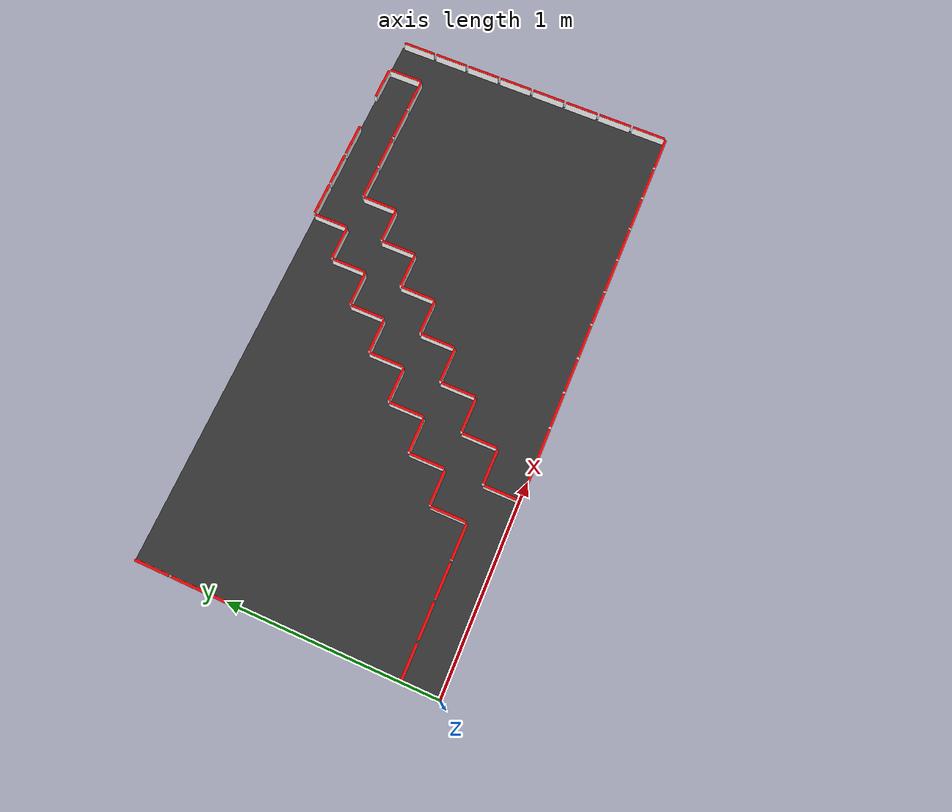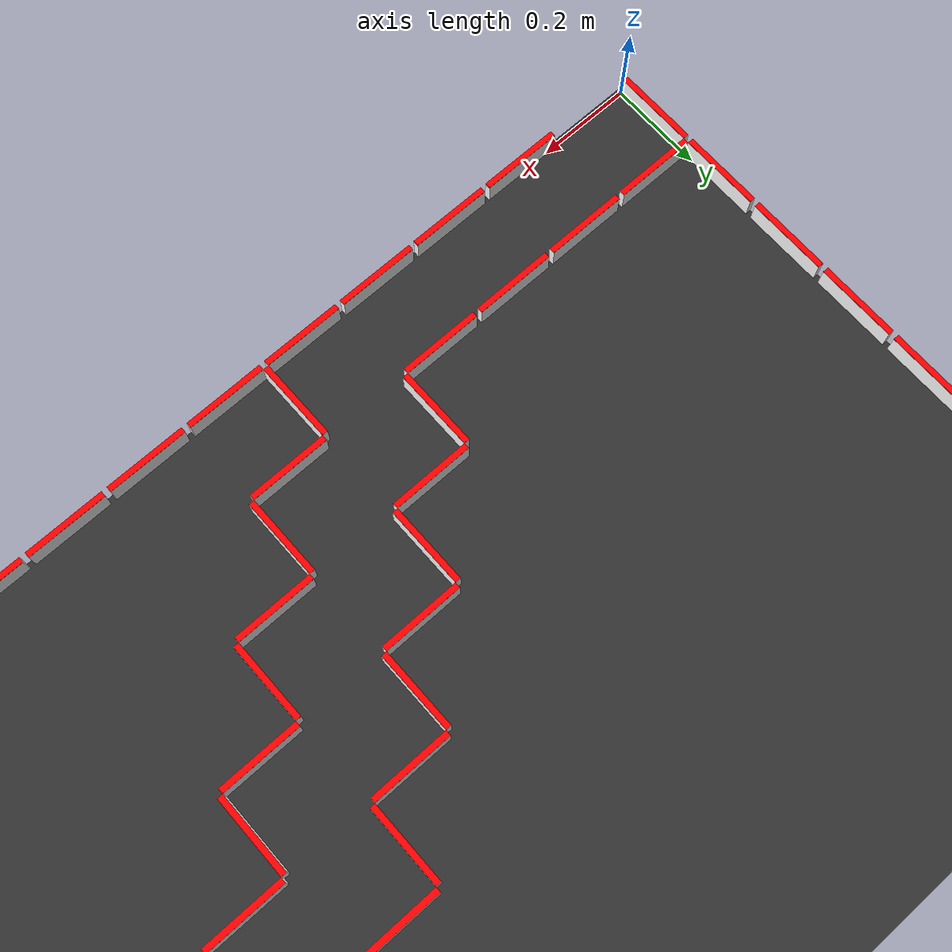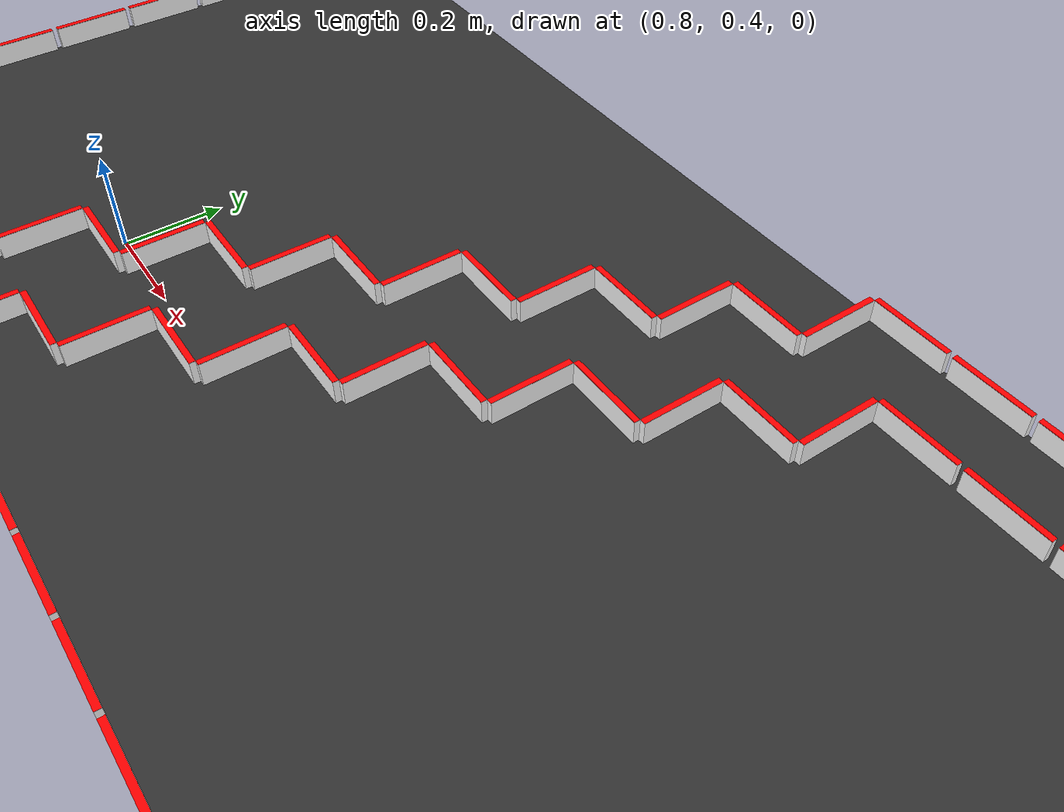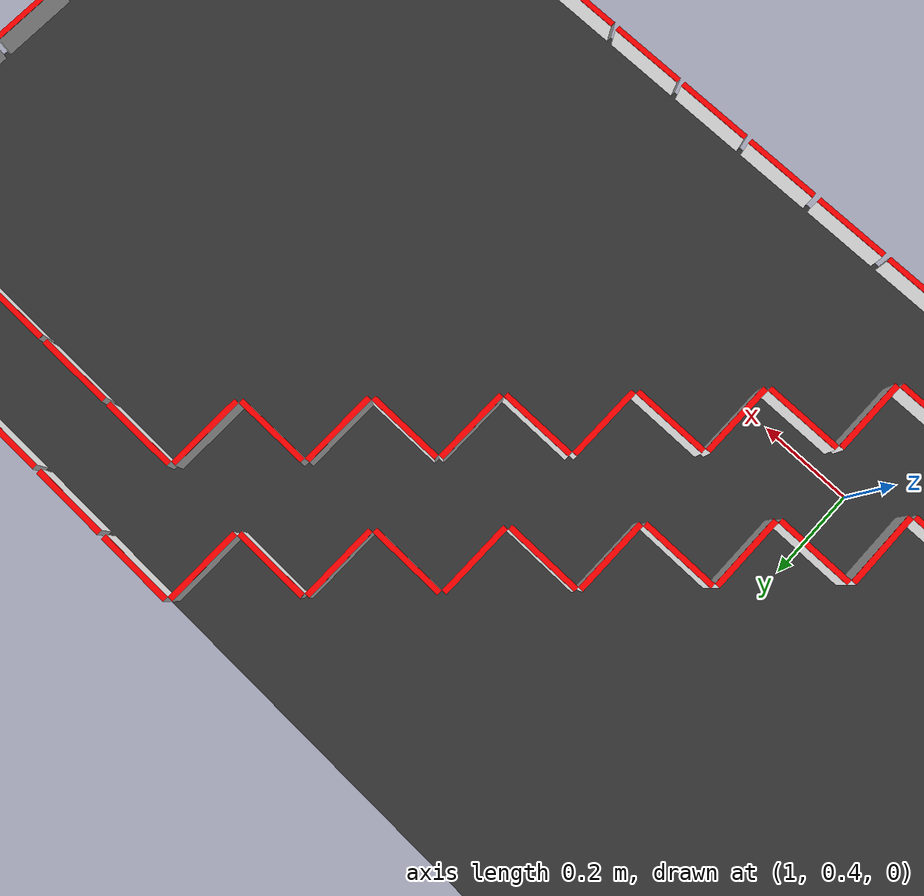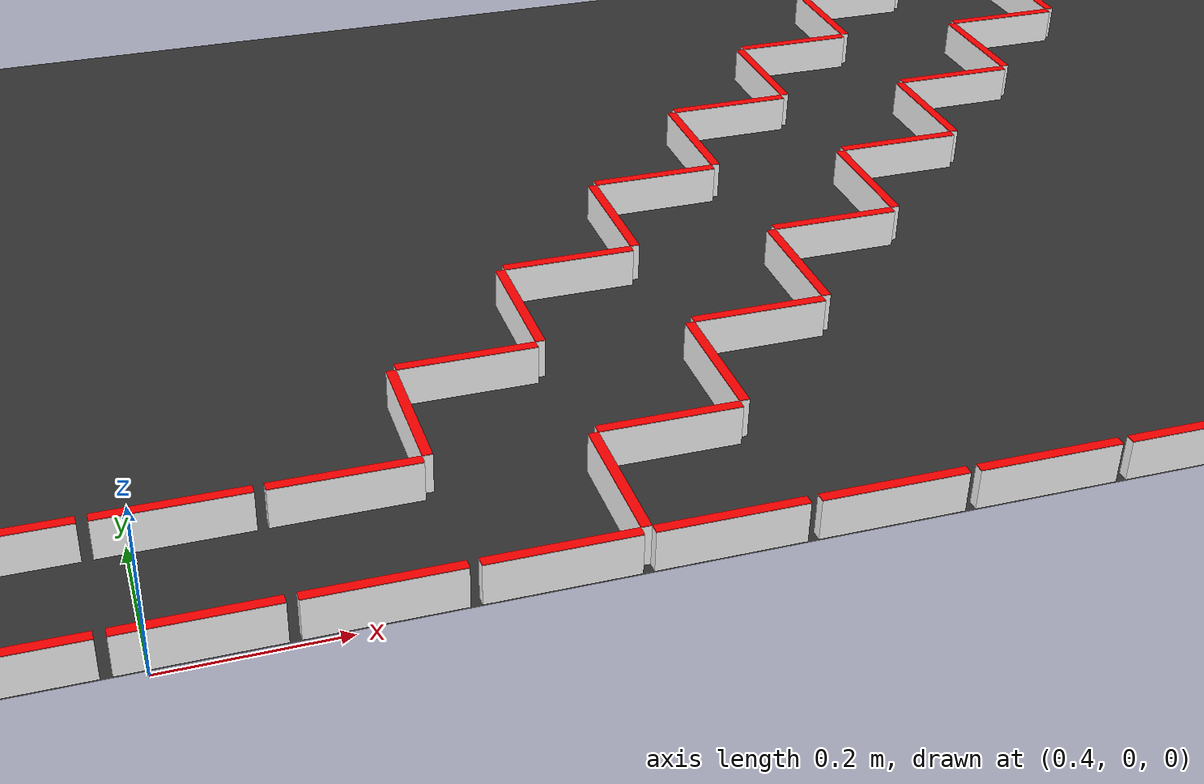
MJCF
<mujoco model="maze">
    <worldbody>
        <body name="base_plate" pos="1.44 0.72 0.012">
        <geom type="plane" mass="0.1" size="1.446 0.726 0.006" rgba="0.2 0.2 0.2 1" friction="0.0 0.0 0.0"/>
        </body>

        <!-- Wall 2-->
        <body pos="0.27 0.0 0.037">
            <body pos="0 0 -0.0005">
                <geom type="box" mass="0.01" size="0.084 0.006 0.0245" rgba="1 1 1 1"/>
            </body>
            <!--�Ǐ�ԊW-->
            <body pos="0 0 0.0245">
                <geom type="box" mass="0.01" size="0.084 0.006 0.0005" rgba="1 0 0 1"/>
            </body>
        </body>

        <!-- Wall 3-->
        <body pos="0.44999999999999996 0.0 0.037">
            <body pos="0 0 -0.0005">
                <geom type="box" mass="0.01" size="0.084 0.006 0.0245" rgba="1 1 1 1"/>
            </body>
            <!--�Ǐ�ԊW-->
            <body pos="0 0 0.0245">
                <geom type="box" mass="0.01" size="0.084 0.006 0.0005" rgba="1 0 0 1"/>
            </body>
        </body>

        <!-- Wall 4-->
        <body pos="0.63 0.0 0.037">
            <body pos="0 0 -0.0005">
                <geom type="box" mass="0.01" size="0.084 0.006 0.0245" rgba="1 1 1 1"/>
            </body>
            <!--�Ǐ�ԊW-->
            <body pos="0 0 0.0245">
                <geom type="box" mass="0.01" size="0.084 0.006 0.0005" rgba="1 0 0 1"/>
            </body>
        </body>

        <!-- Wall 5-->
        <body pos="0.8099999999999999 0.0 0.037">
            <body pos="0 0 -0.0005">
                <geom type="box" mass="0.01" size="0.084 0.006 0.0245" rgba="1 1 1 1"/>
            </body>
            <!--�Ǐ�ԊW-->
            <body pos="0 0 0.0245">
                <geom type="box" mass="0.01" size="0.084 0.006 0.0005" rgba="1 0 0 1"/>
            </body>
        </body>

        <!-- Wall 6-->
        <body pos="0.9899999999999999 0.0 0.037">
            <body pos="0 0 -0.0005">
                <geom type="box" mass="0.01" size="0.084 0.006 0.0245" rgba="1 1 1 1"/>
            </body>
            <!--�Ǐ�ԊW-->
            <body pos="0 0 0.0245">
                <geom type="box" mass="0.01" size="0.084 0.006 0.0005" rgba="1 0 0 1"/>
            </body>
        </body>

        <!-- Wall 7-->
        <body pos="1.1700000000000002 0.0 0.037">
            <body pos="0 0 -0.0005">
                <geom type="box" mass="0.01" size="0.084 0.006 0.0245" rgba="1 1 1 1"/>
            </body>
            <!--�Ǐ�ԊW-->
            <body pos="0 0 0.0245">
                <geom type="box" mass="0.01" size="0.084 0.006 0.0005" rgba="1 0 0 1"/>
            </body>
        </body>

        <!-- Wall 8-->
        <body pos="1.35 0.0 0.037">
            <body pos="0 0 -0.0005">
                <geom type="box" mass="0.01" size="0.084 0.006 0.0245" rgba="1 1 1 1"/>
            </body>
            <!--�Ǐ�ԊW-->
            <body pos="0 0 0.0245">
                <geom type="box" mass="0.01" size="0.084 0.006 0.0005" rgba="1 0 0 1"/>
            </body>
        </body>

        <!-- Wall 9-->
        <body pos="1.53 0.0 0.037">
            <body pos="0 0 -0.0005">
                <geom type="box" mass="0.01" size="0.084 0.006 0.0245" rgba="1 1 1 1"/>
            </body>
            <!--�Ǐ�ԊW-->
            <body pos="0 0 0.0245">
                <geom type="box" mass="0.01" size="0.084 0.006 0.0005" rgba="1 0 0 1"/>
            </body>
        </body>

        <!-- Wall 10-->
        <body pos="1.71 0.0 0.037">
            <body pos="0 0 -0.0005">
                <geom type="box" mass="0.01" size="0.084 0.006 0.0245" rgba="1 1 1 1"/>
            </body>
            <!--�Ǐ�ԊW-->
            <body pos="0 0 0.0245">
                <geom type="box" mass="0.01" size="0.084 0.006 0.0005" rgba="1 0 0 1"/>
            </body>
        </body>

        <!-- Wall 11-->
        <body pos="1.89 0.0 0.037">
            <body pos="0 0 -0.0005">
                <geom type="box" mass="0.01" size="0.084 0.006 0.0245" rgba="1 1 1 1"/>
            </body>
            <!--�Ǐ�ԊW-->
            <body pos="0 0 0.0245">
                <geom type="box" mass="0.01" size="0.084 0.006 0.0005" rgba="1 0 0 1"/>
            </body>
        </body>

        <!-- Wall 12-->
        <body pos="2.07 0.0 0.037">
            <body pos="0 0 -0.0005">
                <geom type="box" mass="0.01" size="0.084 0.006 0.0245" rgba="1 1 1 1"/>
            </body>
            <!--�Ǐ�ԊW-->
            <body pos="0 0 0.0245">
                <geom type="box" mass="0.01" size="0.084 0.006 0.0005" rgba="1 0 0 1"/>
            </body>
        </body>

        <!-- Wall 13-->
        <body pos="2.25 0.0 0.037">
            <body pos="0 0 -0.0005">
                <geom type="box" mass="0.01" size="0.084 0.006 0.0245" rgba="1 1 1 1"/>
            </body>
            <!--�Ǐ�ԊW-->
            <body pos="0 0 0.0245">
                <geom type="box" mass="0.01" size="0.084 0.006 0.0005" rgba="1 0 0 1"/>
            </body>
        </body>

        <!-- Wall 14-->
        <body pos="2.4299999999999997 0.0 0.037">
            <body pos="0 0 -0.0005">
                <geom type="box" mass="0.01" size="0.084 0.006 0.0245" rgba="1 1 1 1"/>
            </body>
            <!--�Ǐ�ԊW-->
            <body pos="0 0 0.0245">
                <geom type="box" mass="0.01" size="0.084 0.006 0.0005" rgba="1 0 0 1"/>
            </body>
        </body>

        <!-- Wall 15-->
        <body pos="2.61 0.0 0.037">
            <body pos="0 0 -0.0005">
                <geom type="box" mass="0.01" size="0.084 0.006 0.0245" rgba="1 1 1 1"/>
            </body>
            <!--�Ǐ�ԊW-->
            <body pos="0 0 0.0245">
                <geom type="box" mass="0.01" size="0.084 0.006 0.0005" rgba="1 0 0 1"/>
            </body>
        </body>

        <!-- Wall 16-->
        <body pos="2.7899999999999996 0.0 0.037">
            <body pos="0 0 -0.0005">
                <geom type="box" mass="0.01" size="0.084 0.006 0.0245" rgba="1 1 1 1"/>
            </body>
            <!--�Ǐ�ԊW-->
            <body pos="0 0 0.0245">
                <geom type="box" mass="0.01" size="0.084 0.006 0.0005" rgba="1 0 0 1"/>
            </body>
        </body>

        <!-- Wall 17-->
        <body pos="0.09 0.18 0.037">
            <body pos="0 0 -0.0005">
                <geom type="box" mass="0.01" size="0.084 0.006 0.0245" rgba="1 1 1 1"/>
            </body>
            <!--�Ǐ�ԊW-->
            <body pos="0 0 0.0245">
                <geom type="box" mass="0.01" size="0.084 0.006 0.0005" rgba="1 0 0 1"/>
            </body>
        </body>

        <!-- Wall 18-->
        <body pos="0.27 0.18 0.037">
            <body pos="0 0 -0.0005">
                <geom type="box" mass="0.01" size="0.084 0.006 0.0245" rgba="1 1 1 1"/>
            </body>
            <!--�Ǐ�ԊW-->
            <body pos="0 0 0.0245">
                <geom type="box" mass="0.01" size="0.084 0.006 0.0005" rgba="1 0 0 1"/>
            </body>
        </body>

        <!-- Wall 19-->
        <body pos="0.44999999999999996 0.18 0.037">
            <body pos="0 0 -0.0005">
                <geom type="box" mass="0.01" size="0.084 0.006 0.0245" rgba="1 1 1 1"/>
            </body>
            <!--�Ǐ�ԊW-->
            <body pos="0 0 0.0245">
                <geom type="box" mass="0.01" size="0.084 0.006 0.0005" rgba="1 0 0 1"/>
            </body>
        </body>

        <!-- Wall 20-->
        <body pos="0.63 0.18 0.037">
            <body pos="0 0 -0.0005">
                <geom type="box" mass="0.01" size="0.084 0.006 0.0245" rgba="1 1 1 1"/>
            </body>
            <!--�Ǐ�ԊW-->
            <body pos="0 0 0.0245">
                <geom type="box" mass="0.01" size="0.084 0.006 0.0005" rgba="1 0 0 1"/>
            </body>
        </body>

        <!-- Wall 21-->
        <body pos="0.9899999999999999 0.18 0.037">
            <body pos="0 0 -0.0005">
                <geom type="box" mass="0.01" size="0.084 0.006 0.0245" rgba="1 1 1 1"/>
            </body>
            <!--�Ǐ�ԊW-->
            <body pos="0 0 0.0245">
                <geom type="box" mass="0.01" size="0.084 0.006 0.0005" rgba="1 0 0 1"/>
            </body>
        </body>

        <!-- Wall 22-->
        <body pos="0.8099999999999999 0.36 0.037">
            <body pos="0 0 -0.0005">
                <geom type="box" mass="0.01" size="0.084 0.006 0.0245" rgba="1 1 1 1"/>
            </body>
            <!--�Ǐ�ԊW-->
            <body pos="0 0 0.0245">
                <geom type="box" mass="0.01" size="0.084 0.006 0.0005" rgba="1 0 0 1"/>
            </body>
        </body>

        <!-- Wall 23-->
        <body pos="1.1700000000000002 0.36 0.037">
            <body pos="0 0 -0.0005">
                <geom type="box" mass="0.01" size="0.084 0.006 0.0245" rgba="1 1 1 1"/>
            </body>
            <!--�Ǐ�ԊW-->
            <body pos="0 0 0.0245">
                <geom type="box" mass="0.01" size="0.084 0.006 0.0005" rgba="1 0 0 1"/>
            </body>
        </body>

        <!-- Wall 24-->
        <body pos="0.9899999999999999 0.54 0.037">
            <body pos="0 0 -0.0005">
                <geom type="box" mass="0.01" size="0.084 0.006 0.0245" rgba="1 1 1 1"/>
            </body>
            <!--�Ǐ�ԊW-->
            <body pos="0 0 0.0245">
                <geom type="box" mass="0.01" size="0.084 0.006 0.0005" rgba="1 0 0 1"/>
            </body>
        </body>

        <!-- Wall 25-->
        <body pos="1.35 0.54 0.037">
            <body pos="0 0 -0.0005">
                <geom type="box" mass="0.01" size="0.084 0.006 0.0245" rgba="1 1 1 1"/>
            </body>
            <!--�Ǐ�ԊW-->
            <body pos="0 0 0.0245">
                <geom type="box" mass="0.01" size="0.084 0.006 0.0005" rgba="1 0 0 1"/>
            </body>
        </body>

        <!-- Wall 26-->
        <body pos="1.1700000000000002 0.72 0.037">
            <body pos="0 0 -0.0005">
                <geom type="box" mass="0.01" size="0.084 0.006 0.0245" rgba="1 1 1 1"/>
            </body>
            <!--�Ǐ�ԊW-->
            <body pos="0 0 0.0245">
                <geom type="box" mass="0.01" size="0.084 0.006 0.0005" rgba="1 0 0 1"/>
            </body>
        </body>

        <!-- Wall 27-->
        <body pos="1.53 0.72 0.037">
            <body pos="0 0 -0.0005">
                <geom type="box" mass="0.01" size="0.084 0.006 0.0245" rgba="1 1 1 1"/>
            </body>
            <!--�Ǐ�ԊW-->
            <body pos="0 0 0.0245">
                <geom type="box" mass="0.01" size="0.084 0.006 0.0005" rgba="1 0 0 1"/>
            </body>
        </body>

        <!-- Wall 28-->
        <body pos="1.35 0.8999999999999999 0.037">
            <body pos="0 0 -0.0005">
                <geom type="box" mass="0.01" size="0.084 0.006 0.0245" rgba="1 1 1 1"/>
            </body>
            <!--�Ǐ�ԊW-->
            <body pos="0 0 0.0245">
                <geom type="box" mass="0.01" size="0.084 0.006 0.0005" rgba="1 0 0 1"/>
            </body>
        </body>

        <!-- Wall 29-->
        <body pos="1.71 0.8999999999999999 0.037">
            <body pos="0 0 -0.0005">
                <geom type="box" mass="0.01" size="0.084 0.006 0.0245" rgba="1 1 1 1"/>
            </body>
            <!--�Ǐ�ԊW-->
            <body pos="0 0 0.0245">
                <geom type="box" mass="0.01" size="0.084 0.006 0.0005" rgba="1 0 0 1"/>
            </body>
        </body>

        <!-- Wall 30-->
        <body pos="1.53 1.08 0.037">
            <body pos="0 0 -0.0005">
                <geom type="box" mass="0.01" size="0.084 0.006 0.0245" rgba="1 1 1 1"/>
            </body>
            <!--�Ǐ�ԊW-->
            <body pos="0 0 0.0245">
                <geom type="box" mass="0.01" size="0.084 0.006 0.0005" rgba="1 0 0 1"/>
            </body>
        </body>

        <!-- Wall 31-->
        <body pos="1.89 1.08 0.037">
            <body pos="0 0 -0.0005">
                <geom type="box" mass="0.01" size="0.084 0.006 0.0245" rgba="1 1 1 1"/>
            </body>
            <!--�Ǐ�ԊW-->
            <body pos="0 0 0.0245">
                <geom type="box" mass="0.01" size="0.084 0.006 0.0005" rgba="1 0 0 1"/>
            </body>
        </body>

        <!-- Wall 32-->
        <body pos="1.71 1.26 0.037">
            <body pos="0 0 -0.0005">
                <geom type="box" mass="0.01" size="0.084 0.006 0.0245" rgba="1 1 1 1"/>
            </body>
            <!--�Ǐ�ԊW-->
            <body pos="0 0 0.0245">
                <geom type="box" mass="0.01" size="0.084 0.006 0.0005" rgba="1 0 0 1"/>
            </body>
        </body>

        <!-- Wall 33-->
        <body pos="2.07 1.26 0.037">
            <body pos="0 0 -0.0005">
                <geom type="box" mass="0.01" size="0.084 0.006 0.0245" rgba="1 1 1 1"/>
            </body>
            <!--�Ǐ�ԊW-->
            <body pos="0 0 0.0245">
                <geom type="box" mass="0.01" size="0.084 0.006 0.0005" rgba="1 0 0 1"/>
            </body>
        </body>

        <!-- Wall 34-->
        <body pos="2.25 1.26 0.037">
            <body pos="0 0 -0.0005">
                <geom type="box" mass="0.01" size="0.084 0.006 0.0245" rgba="1 1 1 1"/>
            </body>
            <!--�Ǐ�ԊW-->
            <body pos="0 0 0.0245">
                <geom type="box" mass="0.01" size="0.084 0.006 0.0005" rgba="1 0 0 1"/>
            </body>
        </body>

        <!-- Wall 35-->
        <body pos="2.4299999999999997 1.26 0.037">
            <body pos="0 0 -0.0005">
                <geom type="box" mass="0.01" size="0.084 0.006 0.0245" rgba="1 1 1 1"/>
            </body>
            <!--�Ǐ�ԊW-->
            <body pos="0 0 0.0245">
                <geom type="box" mass="0.01" size="0.084 0.006 0.0005" rgba="1 0 0 1"/>
            </body>
        </body>

        <!-- Wall 36-->
        <body pos="2.61 1.26 0.037">
            <body pos="0 0 -0.0005">
                <geom type="box" mass="0.01" size="0.084 0.006 0.0245" rgba="1 1 1 1"/>
            </body>
            <!--�Ǐ�ԊW-->
            <body pos="0 0 0.0245">
                <geom type="box" mass="0.01" size="0.084 0.006 0.0005" rgba="1 0 0 1"/>
            </body>
        </body>

        <!-- Wall 37-->
        <body pos="1.89 1.44 0.037">
            <body pos="0 0 -0.0005">
                <geom type="box" mass="0.01" size="0.084 0.006 0.0245" rgba="1 1 1 1"/>
            </body>
            <!--�Ǐ�ԊW-->
            <body pos="0 0 0.0245">
                <geom type="box" mass="0.01" size="0.084 0.006 0.0005" rgba="1 0 0 1"/>
            </body>
        </body>

        <!-- Wall 38-->
        <body pos="2.07 1.44 0.037">
            <body pos="0 0 -0.0005">
                <geom type="box" mass="0.01" size="0.084 0.006 0.0245" rgba="1 1 1 1"/>
            </body>
            <!--�Ǐ�ԊW-->
            <body pos="0 0 0.0245">
                <geom type="box" mass="0.01" size="0.084 0.006 0.0005" rgba="1 0 0 1"/>
            </body>
        </body>

        <!-- Wall 39-->
        <body pos="2.25 1.44 0.037">
            <body pos="0 0 -0.0005">
                <geom type="box" mass="0.01" size="0.084 0.006 0.0245" rgba="1 1 1 1"/>
            </body>
            <!--�Ǐ�ԊW-->
            <body pos="0 0 0.0245">
                <geom type="box" mass="0.01" size="0.084 0.006 0.0005" rgba="1 0 0 1"/>
            </body>
        </body>

        <!-- Wall 40-->
        <body pos="2.61 1.44 0.037">
            <body pos="0 0 -0.0005">
                <geom type="box" mass="0.01" size="0.084 0.006 0.0245" rgba="1 1 1 1"/>
            </body>
            <!--�Ǐ�ԊW-->
            <body pos="0 0 0.0245">
                <geom type="box" mass="0.01" size="0.084 0.006 0.0005" rgba="1 0 0 1"/>
            </body>
        </body>

        <!-- Wall 41-->
        <body pos="0.0 0.09 0.037">
            <body pos="0 0 -0.0005">
                <geom type="box" mass="0.01" size="0.006 0.084 0.0245" rgba="1 1 1 1"/>
            </body>
            <!--�Ǐ�ԊW-->
            <body pos="0 0 0.0245">
                <geom type="box" mass="0.01" size="0.006 0.084 0.0005" rgba="1 0 0 1"/>
            </body>
        </body>

        <!-- Wall 42-->
        <body pos="0.8999999999999999 0.09 0.037">
            <body pos="0 0 -0.0005">
                <geom type="box" mass="0.01" size="0.006 0.084 0.0245" rgba="1 1 1 1"/>
            </body>
            <!--�Ǐ�ԊW-->
            <body pos="0 0 0.0245">
                <geom type="box" mass="0.01" size="0.006 0.084 0.0005" rgba="1 0 0 1"/>
            </body>
        </body>

        <!-- Wall 43-->
        <body pos="2.88 0.09 0.037">
            <body pos="0 0 -0.0005">
                <geom type="box" mass="0.01" size="0.006 0.084 0.0245" rgba="1 1 1 1"/>
            </body>
            <!--�Ǐ�ԊW-->
            <body pos="0 0 0.0245">
                <geom type="box" mass="0.01" size="0.006 0.084 0.0005" rgba="1 0 0 1"/>
            </body>
        </body>

        <!-- Wall 44-->
        <body pos="0.0 0.27 0.037">
            <body pos="0 0 -0.0005">
                <geom type="box" mass="0.01" size="0.006 0.084 0.0245" rgba="1 1 1 1"/>
            </body>
            <!--�Ǐ�ԊW-->
            <body pos="0 0 0.0245">
                <geom type="box" mass="0.01" size="0.006 0.084 0.0005" rgba="1 0 0 1"/>
            </body>
        </body>

        <!-- Wall 45-->
        <body pos="0.72 0.27 0.037">
            <body pos="0 0 -0.0005">
                <geom type="box" mass="0.01" size="0.006 0.084 0.0245" rgba="1 1 1 1"/>
            </body>
            <!--�Ǐ�ԊW-->
            <body pos="0 0 0.0245">
                <geom type="box" mass="0.01" size="0.006 0.084 0.0005" rgba="1 0 0 1"/>
            </body>
        </body>

        <!-- Wall 46-->
        <body pos="1.08 0.27 0.037">
            <body pos="0 0 -0.0005">
                <geom type="box" mass="0.01" size="0.006 0.084 0.0245" rgba="1 1 1 1"/>
            </body>
            <!--�Ǐ�ԊW-->
            <body pos="0 0 0.0245">
                <geom type="box" mass="0.01" size="0.006 0.084 0.0005" rgba="1 0 0 1"/>
            </body>
        </body>

        <!-- Wall 47-->
        <body pos="2.88 0.27 0.037">
            <body pos="0 0 -0.0005">
                <geom type="box" mass="0.01" size="0.006 0.084 0.0245" rgba="1 1 1 1"/>
            </body>
            <!--�Ǐ�ԊW-->
            <body pos="0 0 0.0245">
                <geom type="box" mass="0.01" size="0.006 0.084 0.0005" rgba="1 0 0 1"/>
            </body>
        </body>

        <!-- Wall 48-->
        <body pos="0.0 0.44999999999999996 0.037">
            <body pos="0 0 -0.0005">
                <geom type="box" mass="0.01" size="0.006 0.084 0.0245" rgba="1 1 1 1"/>
            </body>
            <!--�Ǐ�ԊW-->
            <body pos="0 0 0.0245">
                <geom type="box" mass="0.01" size="0.006 0.084 0.0005" rgba="1 0 0 1"/>
            </body>
        </body>

        <!-- Wall 49-->
        <body pos="0.8999999999999999 0.44999999999999996 0.037">
            <body pos="0 0 -0.0005">
                <geom type="box" mass="0.01" size="0.006 0.084 0.0245" rgba="1 1 1 1"/>
            </body>
            <!--�Ǐ�ԊW-->
            <body pos="0 0 0.0245">
                <geom type="box" mass="0.01" size="0.006 0.084 0.0005" rgba="1 0 0 1"/>
            </body>
        </body>

        <!-- Wall 50-->
        <body pos="1.26 0.44999999999999996 0.037">
            <body pos="0 0 -0.0005">
                <geom type="box" mass="0.01" size="0.006 0.084 0.0245" rgba="1 1 1 1"/>
            </body>
            <!--�Ǐ�ԊW-->
            <body pos="0 0 0.0245">
                <geom type="box" mass="0.01" size="0.006 0.084 0.0005" rgba="1 0 0 1"/>
            </body>
        </body>

        <!-- Wall 51-->
        <body pos="2.88 0.44999999999999996 0.037">
            <body pos="0 0 -0.0005">
                <geom type="box" mass="0.01" size="0.006 0.084 0.0245" rgba="1 1 1 1"/>
            </body>
            <!--�Ǐ�ԊW-->
            <body pos="0 0 0.0245">
                <geom type="box" mass="0.01" size="0.006 0.084 0.0005" rgba="1 0 0 1"/>
            </body>
        </body>

        <!-- Wall 52-->
        <body pos="0.0 0.63 0.037">
            <body pos="0 0 -0.0005">
                <geom type="box" mass="0.01" size="0.006 0.084 0.0245" rgba="1 1 1 1"/>
            </body>
            <!--�Ǐ�ԊW-->
            <body pos="0 0 0.0245">
                <geom type="box" mass="0.01" size="0.006 0.084 0.0005" rgba="1 0 0 1"/>
            </body>
        </body>

        <!-- Wall 53-->
        <body pos="1.08 0.63 0.037">
            <body pos="0 0 -0.0005">
                <geom type="box" mass="0.01" size="0.006 0.084 0.0245" rgba="1 1 1 1"/>
            </body>
            <!--�Ǐ�ԊW-->
            <body pos="0 0 0.0245">
                <geom type="box" mass="0.01" size="0.006 0.084 0.0005" rgba="1 0 0 1"/>
            </body>
        </body>

        <!-- Wall 54-->
        <body pos="1.44 0.63 0.037">
            <body pos="0 0 -0.0005">
                <geom type="box" mass="0.01" size="0.006 0.084 0.0245" rgba="1 1 1 1"/>
            </body>
            <!--�Ǐ�ԊW-->
            <body pos="0 0 0.0245">
                <geom type="box" mass="0.01" size="0.006 0.084 0.0005" rgba="1 0 0 1"/>
            </body>
        </body>

        <!-- Wall 55-->
        <body pos="2.88 0.63 0.037">
            <body pos="0 0 -0.0005">
                <geom type="box" mass="0.01" size="0.006 0.084 0.0245" rgba="1 1 1 1"/>
            </body>
            <!--�Ǐ�ԊW-->
            <body pos="0 0 0.0245">
                <geom type="box" mass="0.01" size="0.006 0.084 0.0005" rgba="1 0 0 1"/>
            </body>
        </body>

        <!-- Wall 56-->
        <body pos="0.0 0.8099999999999999 0.037">
            <body pos="0 0 -0.0005">
                <geom type="box" mass="0.01" size="0.006 0.084 0.0245" rgba="1 1 1 1"/>
            </body>
            <!--�Ǐ�ԊW-->
            <body pos="0 0 0.0245">
                <geom type="box" mass="0.01" size="0.006 0.084 0.0005" rgba="1 0 0 1"/>
            </body>
        </body>

        <!-- Wall 57-->
        <body pos="1.26 0.8099999999999999 0.037">
            <body pos="0 0 -0.0005">
                <geom type="box" mass="0.01" size="0.006 0.084 0.0245" rgba="1 1 1 1"/>
            </body>
            <!--�Ǐ�ԊW-->
            <body pos="0 0 0.0245">
                <geom type="box" mass="0.01" size="0.006 0.084 0.0005" rgba="1 0 0 1"/>
            </body>
        </body>

        <!-- Wall 58-->
        <body pos="1.6199999999999999 0.8099999999999999 0.037">
            <body pos="0 0 -0.0005">
                <geom type="box" mass="0.01" size="0.006 0.084 0.0245" rgba="1 1 1 1"/>
            </body>
            <!--�Ǐ�ԊW-->
            <body pos="0 0 0.0245">
                <geom type="box" mass="0.01" size="0.006 0.084 0.0005" rgba="1 0 0 1"/>
            </body>
        </body>

        <!-- Wall 59-->
        <body pos="2.88 0.8099999999999999 0.037">
            <body pos="0 0 -0.0005">
                <geom type="box" mass="0.01" size="0.006 0.084 0.0245" rgba="1 1 1 1"/>
            </body>
            <!--�Ǐ�ԊW-->
            <body pos="0 0 0.0245">
                <geom type="box" mass="0.01" size="0.006 0.084 0.0005" rgba="1 0 0 1"/>
            </body>
        </body>

        <!-- Wall 60-->
        <body pos="0.0 0.9899999999999999 0.037">
            <body pos="0 0 -0.0005">
                <geom type="box" mass="0.01" size="0.006 0.084 0.0245" rgba="1 1 1 1"/>
            </body>
            <!--�Ǐ�ԊW-->
            <body pos="0 0 0.0245">
                <geom type="box" mass="0.01" size="0.006 0.084 0.0005" rgba="1 0 0 1"/>
            </body>
        </body>

        <!-- Wall 61-->
        <body pos="1.44 0.9899999999999999 0.037">
            <body pos="0 0 -0.0005">
                <geom type="box" mass="0.01" size="0.006 0.084 0.0245" rgba="1 1 1 1"/>
            </body>
            <!--�Ǐ�ԊW-->
            <body pos="0 0 0.0245">
                <geom type="box" mass="0.01" size="0.006 0.084 0.0005" rgba="1 0 0 1"/>
            </body>
        </body>

        <!-- Wall 62-->
        <body pos="1.7999999999999998 0.9899999999999999 0.037">
            <body pos="0 0 -0.0005">
                <geom type="box" mass="0.01" size="0.006 0.084 0.0245" rgba="1 1 1 1"/>
            </body>
            <!--�Ǐ�ԊW-->
            <body pos="0 0 0.0245">
                <geom type="box" mass="0.01" size="0.006 0.084 0.0005" rgba="1 0 0 1"/>
            </body>
        </body>

        <!-- Wall 63-->
        <body pos="2.88 0.9899999999999999 0.037">
            <body pos="0 0 -0.0005">
                <geom type="box" mass="0.01" size="0.006 0.084 0.0245" rgba="1 1 1 1"/>
            </body>
            <!--�Ǐ�ԊW-->
            <body pos="0 0 0.0245">
                <geom type="box" mass="0.01" size="0.006 0.084 0.0005" rgba="1 0 0 1"/>
            </body>
        </body>

        <!-- Wall 64-->
        <body pos="0.0 1.1700000000000002 0.037">
            <body pos="0 0 -0.0005">
                <geom type="box" mass="0.01" size="0.006 0.084 0.0245" rgba="1 1 1 1"/>
            </body>
            <!--�Ǐ�ԊW-->
            <body pos="0 0 0.0245">
                <geom type="box" mass="0.01" size="0.006 0.084 0.0005" rgba="1 0 0 1"/>
            </body>
        </body>

        <!-- Wall 65-->
        <body pos="1.6199999999999999 1.1700000000000002 0.037">
            <body pos="0 0 -0.0005">
                <geom type="box" mass="0.01" size="0.006 0.084 0.0245" rgba="1 1 1 1"/>
            </body>
            <!--�Ǐ�ԊW-->
            <body pos="0 0 0.0245">
                <geom type="box" mass="0.01" size="0.006 0.084 0.0005" rgba="1 0 0 1"/>
            </body>
        </body>

        <!-- Wall 66-->
        <body pos="1.98 1.1700000000000002 0.037">
            <body pos="0 0 -0.0005">
                <geom type="box" mass="0.01" size="0.006 0.084 0.0245" rgba="1 1 1 1"/>
            </body>
            <!--�Ǐ�ԊW-->
            <body pos="0 0 0.0245">
                <geom type="box" mass="0.01" size="0.006 0.084 0.0005" rgba="1 0 0 1"/>
            </body>
        </body>

        <!-- Wall 67-->
        <body pos="2.88 1.1700000000000002 0.037">
            <body pos="0 0 -0.0005">
                <geom type="box" mass="0.01" size="0.006 0.084 0.0245" rgba="1 1 1 1"/>
            </body>
            <!--�Ǐ�ԊW-->
            <body pos="0 0 0.0245">
                <geom type="box" mass="0.01" size="0.006 0.084 0.0005" rgba="1 0 0 1"/>
            </body>
        </body>

        <!-- Wall 68-->
        <body pos="0.0 1.35 0.037">
            <body pos="0 0 -0.0005">
                <geom type="box" mass="0.01" size="0.006 0.084 0.0245" rgba="1 1 1 1"/>
            </body>
            <!--�Ǐ�ԊW-->
            <body pos="0 0 0.0245">
                <geom type="box" mass="0.01" size="0.006 0.084 0.0005" rgba="1 0 0 1"/>
            </body>
        </body>

        <!-- Wall 69-->
        <body pos="1.7999999999999998 1.35 0.037">
            <body pos="0 0 -0.0005">
                <geom type="box" mass="0.01" size="0.006 0.084 0.0245" rgba="1 1 1 1"/>
            </body>
            <!--�Ǐ�ԊW-->
            <body pos="0 0 0.0245">
                <geom type="box" mass="0.01" size="0.006 0.084 0.0005" rgba="1 0 0 1"/>
            </body>
        </body>

        <!-- Wall 70-->
        <body pos="2.6999999999999997 1.35 0.037">
            <body pos="0 0 -0.0005">
                <geom type="box" mass="0.01" size="0.006 0.084 0.0245" rgba="1 1 1 1"/>
            </body>
            <!--�Ǐ�ԊW-->
            <body pos="0 0 0.0245">
                <geom type="box" mass="0.01" size="0.006 0.084 0.0005" rgba="1 0 0 1"/>
            </body>
        </body>

        <!-- Wall 71-->
        <body pos="2.88 1.35 0.037">
            <body pos="0 0 -0.0005">
                <geom type="box" mass="0.01" size="0.006 0.084 0.0245" rgba="1 1 1 1"/>
            </body>
            <!--�Ǐ�ԊW-->
            <body pos="0 0 0.0245">
                <geom type="box" mass="0.01" size="0.006 0.084 0.0005" rgba="1 0 0 1"/>
            </body>
        </body>
    </worldbody>
</mujoco>
